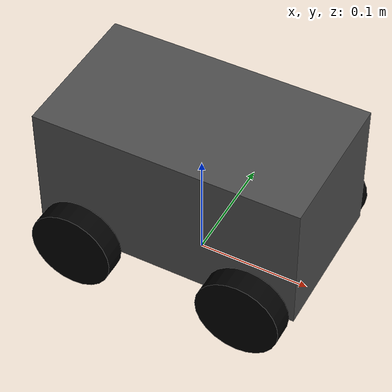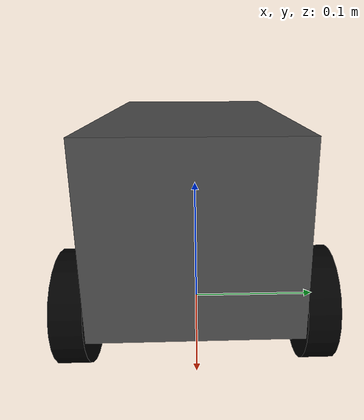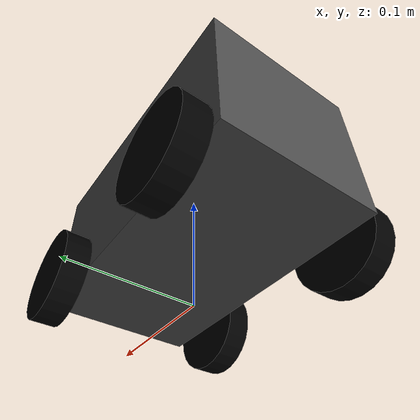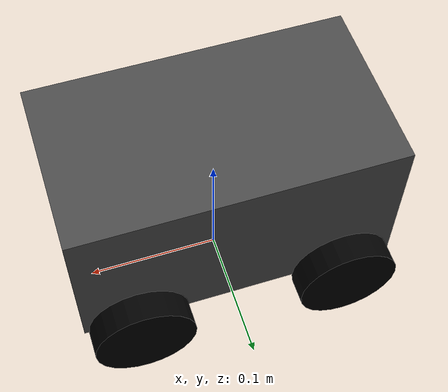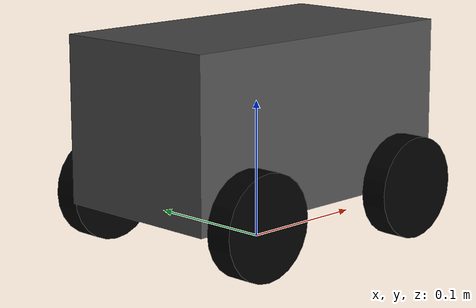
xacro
<?xml version="1.0"?>
<robot xmlns:xacro="http://www.ros.org/wiki/xacro">

  <!-- ================= ROBOT PARAMETERS ================= -->
  <xacro:property name="base_length" value="0.235"/>
  <xacro:property name="base_width"  value="0.13"/>
  <xacro:property name="base_height" value="0.12"/>

  <xacro:property name="wheel_radius" value="0.03725"/>
  <xacro:property name="wheel_length" value="0.02"/>

  <!-- ================= BASE ================= -->
  <link name="base_footprint"/>

  <link name="base_link">

    <inertial>
      <origin xyz="0 0 0.09424" rpy="0 0 0"/>
      <mass value="3"/>
      <inertia ixx="0.00783" ixy="0.0" ixz="0.0"
               iyy="0.01741" iyz="0.0"
               izz="0.01803"/>
    </inertial>

    <visual>
      <origin xyz="0 0 0.09424" rpy="0 0 0"/>
      <geometry>
        <box size="${base_length} ${base_width} ${base_height}"/>
      </geometry>
      <material name="chassis_grey">
        <color rgba="0.3 0.3 0.3 1.0"/>
      </material>
    </visual>

    <collision>
      <origin xyz="0 0 0.09424" rpy="0 0 0"/>
      <geometry>
        <box size="${base_length} ${base_width} ${base_height}"/>
      </geometry>
    </collision>
  </link>

  <joint name="base_footprint_to_base_link" type="fixed">
    <parent link="base_footprint"/>
    <child link="base_link"/>
    <origin xyz="0 0 0" rpy="0 0 0"/>
  </joint>

 <!-- ================= WHEELS MACRO ================= -->
  <xacro:macro name="wheel" params="name x y">
    <link name="${name}_link">
      <visual>
        <geometry>
          <cylinder radius="${wheel_radius}" length="${wheel_length}"/>
        </geometry>

        <material name="wheel_black">
          <color rgba="0.0 0.0 0.0 1.0"/>
        </material>

        <origin xyz="0 0 0" rpy="${pi/2} 0 0"/>
      </visual>

      <inertial>
        <origin xyz="0 0 0" rpy="0 0 0"/>
        <mass value="0.1"/>
        <inertia ixx="0.0001" ixy="0.0" ixz="0.0"
                 iyy="0.0001" iyz="0.0"
                 izz="0.0001"/>
      </inertial>

      <collision>
        <origin xyz="0 0 0" rpy="${pi/2} 0 0"/>
        <geometry>
          <cylinder radius="${wheel_radius}" length="${wheel_length}"/>
        </geometry>
      </collision>

    </link>

    <joint name="${name}_joint" type="continuous">
      <parent link="base_link"/>
      <child link="${name}_link"/>
      <origin xyz="${x} ${y} ${wheel_radius}" rpy= "0 0 0"/>
      <axis xyz="0 1 0"/>
    </joint>
  </xacro:macro>

  <!-- ================= WHEELS ================= -->
  <xacro:wheel name="wheel_fl" x="0.077" y="0.077"/>
  <xacro:wheel name="wheel_fr" x="0.077" y="-0.077"/>
  <xacro:wheel name="wheel_rl" x="-0.077" y="0.077"/>
  <xacro:wheel name="wheel_rr" x="-0.077" y="-0.077"/>

</robot>
